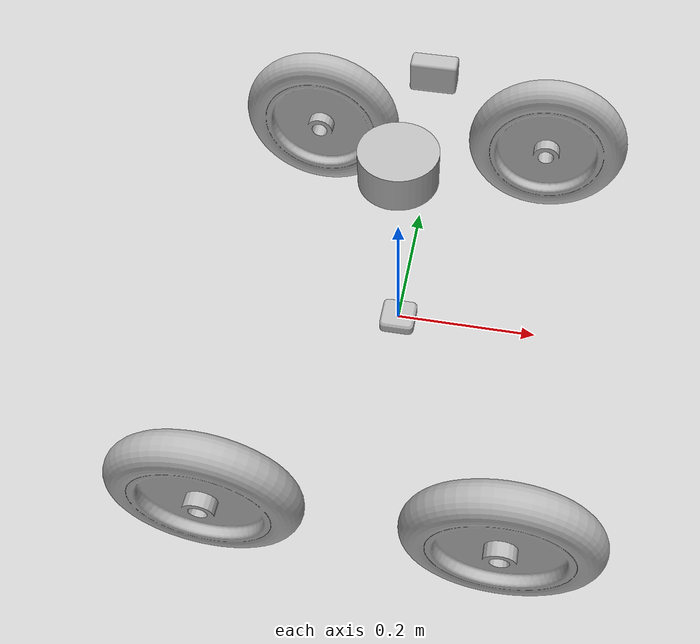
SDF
<sdf version='1.7'>
  <model name='my_bot'>
    <link name='base_link'>
      <inertial>
        <pose>0.010803 0.002865 0.178941 0 -0 0</pose>
        <mass>13.829</mass>
        <inertia>
          <ixx>0.33188</ixx>
          <ixy>0.000411165</ixy>
          <ixz>0.000451077</ixz>
          <iyy>0.275665</iyy>
          <iyz>-0.000559536</iyz>
          <izz>0.558828</izz>
        </inertia>
      </inertial>
      <collision name='base_link_collision'>
        <pose>0 0 0 0 -0 0</pose>
        <geometry>
          <mesh>
            <scale>1 1 1</scale>
            <uri>file:///home/sunilkumar/dev_ws/src/my_bot/meshes/base_link.STL</uri>
          </mesh>
        </geometry>
      </collision>
      <collision name='base_link_fixed_joint_lump__laser_frame_collision_1'>
        <pose>0 0 0.338 0 -0 0</pose>
        <geometry>
          <mesh>
            <scale>1 1 1</scale>
            <uri>file:///home/sunilkumar/dev_ws/src/my_bot/meshes/laser_frame.STL</uri>
          </mesh>
        </geometry>
      </collision>
      <collision name='base_link_fixed_joint_lump__rtk_collision_2'>
        <pose>0 0.335 0.193 0 -0 0</pose>
        <geometry>
          <mesh>
            <scale>1 1 1</scale>
            <uri>file:///home/sunilkumar/dev_ws/src/my_bot/meshes/rtk.STL</uri>
          </mesh>
        </geometry>
      </collision>
      <visual name='base_link_visual'>
        <pose>0 0 0 0 -0 0</pose>
        <geometry>
          <mesh>
            <scale>1 1 1</scale>
            <uri>file:///home/sunilkumar/dev_ws/src/my_bot/meshes/base_link.STL</uri>
          </mesh>
        </geometry>
      </visual>
      <visual name='base_link_fixed_joint_lump__laser_frame_visual_1'>
        <pose>0 0 0.338 0 -0 0</pose>
        <geometry>
          <mesh>
            <scale>1 1 1</scale>
            <uri>file:///home/sunilkumar/dev_ws/src/my_bot/meshes/laser_frame.STL</uri>
          </mesh>
        </geometry>
      </visual>
      <visual name='base_link_fixed_joint_lump__rtk_visual_2'>
        <pose>0 0.335 0.193 0 -0 0</pose>
        <geometry>
          <mesh>
            <scale>1 1 1</scale>
            <uri>file:///home/sunilkumar/dev_ws/src/my_bot/meshes/rtk.STL</uri>
          </mesh>
        </geometry>
      </visual>
    </link>
    <joint name='back_left_wheel_joint' type='revolute'>
      <pose relative_to='base_link'>-0.18566 0.37 0.0505 -1.5708 0 0</pose>
      <parent>base_link</parent>
      <child>back_left_wheel</child>
      <axis>
        <xyz>0 0 -1</xyz>
        <limit>
          <effort>1</effort>
          <velocity>1</velocity>
          <lower>-1e+16</lower>
          <upper>1e+16</upper>
        </limit>
        <dynamics>
          <spring_reference>0</spring_reference>
          <spring_stiffness>0</spring_stiffness>
        </dynamics>
      </axis>
    </joint>
    <link name='back_left_wheel'>
      <pose relative_to='back_left_wheel_joint'>0 0 0 0 -0 0</pose>
      <inertial>
        <pose>-0 -0 -0.029 0 -0 0</pose>
        <mass>1.76534</mass>
        <inertia>
          <ixx>0.00818088</ixx>
          <ixy>8.31222e-19</ixy>
          <ixz>1.55059e-19</ixz>
          <iyy>0.00818088</iyy>
          <iyz>2.65575e-17</iyz>
          <izz>0.0158039</izz>
        </inertia>
      </inertial>
      <collision name='back_left_wheel_collision'>
        <pose>0 0 0 0 -0 0</pose>
        <geometry>
          <mesh>
            <scale>1 1 1</scale>
            <uri>file:///home/sunilkumar/dev_ws/src/my_bot/meshes/back_left_wheel.STL</uri>
          </mesh>
        </geometry>
      </collision>
      <visual name='back_left_wheel_visual'>
        <pose>0 0 0 0 -0 0</pose>
        <geometry>
          <mesh>
            <scale>1 1 1</scale>
            <uri>file:///home/sunilkumar/dev_ws/src/my_bot/meshes/back_left_wheel.STL</uri>
          </mesh>
        </geometry>
      </visual>
    </link>
    <joint name='back_right_wheel_joint' type='revolute'>
      <pose relative_to='base_link'>-0.18566 -0.37 0.0505 1.5708 -0 0</pose>
      <parent>base_link</parent>
      <child>back_right_wheel</child>
      <axis>
        <xyz>0 0 1</xyz>
        <limit>
          <effort>1</effort>
          <velocity>1</velocity>
          <lower>-1e+16</lower>
          <upper>1e+16</upper>
        </limit>
        <dynamics>
          <spring_reference>0</spring_reference>
          <spring_stiffness>0</spring_stiffness>
        </dynamics>
      </axis>
    </joint>
    <link name='back_right_wheel'>
      <pose relative_to='back_right_wheel_joint'>0 0 0 0 -0 0</pose>
      <inertial>
        <pose>0 -0 -0.029 0 -0 0</pose>
        <mass>1.76534</mass>
        <inertia>
          <ixx>0.00818088</ixx>
          <ixy>-8.31222e-19</ixy>
          <ixz>-1.63529e-19</ixz>
          <iyy>0.00818088</iyy>
          <iyz>5.33493e-17</iyz>
          <izz>0.0158039</izz>
        </inertia>
      </inertial>
      <collision name='back_right_wheel_collision'>
        <pose>0 0 0 0 -0 0</pose>
        <geometry>
          <mesh>
            <scale>1 1 1</scale>
            <uri>file:///home/sunilkumar/dev_ws/src/my_bot/meshes/back_right_wheel.STL</uri>
          </mesh>
        </geometry>
      </collision>
      <visual name='back_right_wheel_visual'>
        <pose>0 0 0 0 -0 0</pose>
        <geometry>
          <mesh>
            <scale>1 1 1</scale>
            <uri>file:///home/sunilkumar/dev_ws/src/my_bot/meshes/back_right_wheel.STL</uri>
          </mesh>
        </geometry>
      </visual>
    </link>
    <joint name='front_left_wheel_joint' type='revolute'>
      <pose relative_to='base_link'>0.18566 0.37 0.0505 -1.5708 0 0</pose>
      <parent>base_link</parent>
      <child>front_left_wheel</child>
      <axis>
        <xyz>0 0 -1</xyz>
        <limit>
          <effort>1</effort>
          <velocity>1</velocity>
          <lower>-1e+16</lower>
          <upper>1e+16</upper>
        </limit>
        <dynamics>
          <spring_reference>0</spring_reference>
          <spring_stiffness>0</spring_stiffness>
        </dynamics>
      </axis>
    </joint>
    <link name='front_left_wheel'>
      <pose relative_to='front_left_wheel_joint'>0 0 0 0 -0 0</pose>
      <inertial>
        <pose>0 -0 -0.029 0 -0 0</pose>
        <mass>1.76534</mass>
        <inertia>
          <ixx>0.00818088</ixx>
          <ixy>1.17455e-18</ixy>
          <ixz>5.62383e-20</ixz>
          <iyy>0.00818088</iyy>
          <iyz>2.65575e-17</iyz>
          <izz>0.0158039</izz>
        </inertia>
      </inertial>
      <collision name='front_left_wheel_collision'>
        <pose>0 0 0 0 -0 0</pose>
        <geometry>
          <mesh>
            <scale>1 1 1</scale>
            <uri>file:///home/sunilkumar/dev_ws/src/my_bot/meshes/front_left_wheel.STL</uri>
          </mesh>
        </geometry>
      </collision>
      <visual name='front_left_wheel_visual'>
        <pose>0 0 0 0 -0 0</pose>
        <geometry>
          <mesh>
            <scale>1 1 1</scale>
            <uri>file:///home/sunilkumar/dev_ws/src/my_bot/meshes/front_left_wheel.STL</uri>
          </mesh>
        </geometry>
      </visual>
    </link>
    <joint name='front_right_wheel_joint' type='revolute'>
      <pose relative_to='base_link'>0.18566 -0.37 0.0505 1.5708 -0 0</pose>
      <parent>base_link</parent>
      <child>front_right_wheel</child>
      <axis>
        <xyz>0 0 1</xyz>
        <limit>
          <effort>1</effort>
          <velocity>1</velocity>
          <lower>-1e+16</lower>
          <upper>1e+16</upper>
        </limit>
        <dynamics>
          <spring_reference>0</spring_reference>
          <spring_stiffness>0</spring_stiffness>
        </dynamics>
      </axis>
    </joint>
    <link name='front_right_wheel'>
      <pose relative_to='front_right_wheel_joint'>0 0 0 0 -0 0</pose>
      <inertial>
        <pose>0 -0 -0.029 0 -0 0</pose>
        <mass>1.76534</mass>
        <inertia>
          <ixx>0.00818088</ixx>
          <ixy>1.55584e-18</ixy>
          <ixz>-1.57806e-20</ixz>
          <iyy>0.00818088</iyy>
          <iyz>2.76541e-17</iyz>
          <izz>0.0158039</izz>
        </inertia>
      </inertial>
      <collision name='front_right_wheel_collision'>
        <pose>0 0 0 0 -0 0</pose>
        <geometry>
          <mesh>
            <scale>1 1 1</scale>
            <uri>file:///home/sunilkumar/dev_ws/src/my_bot/meshes/front_right_wheel.STL</uri>
          </mesh>
        </geometry>
      </collision>
      <visual name='front_right_wheel_visual'>
        <pose>0 0 0 0 -0 0</pose>
        <geometry>
          <mesh>
            <scale>1 1 1</scale>
            <uri>file:///home/sunilkumar/dev_ws/src/my_bot/meshes/front_right_wheel.STL</uri>
          </mesh>
        </geometry>
      </visual>
    </link>
  </model>
</sdf>
